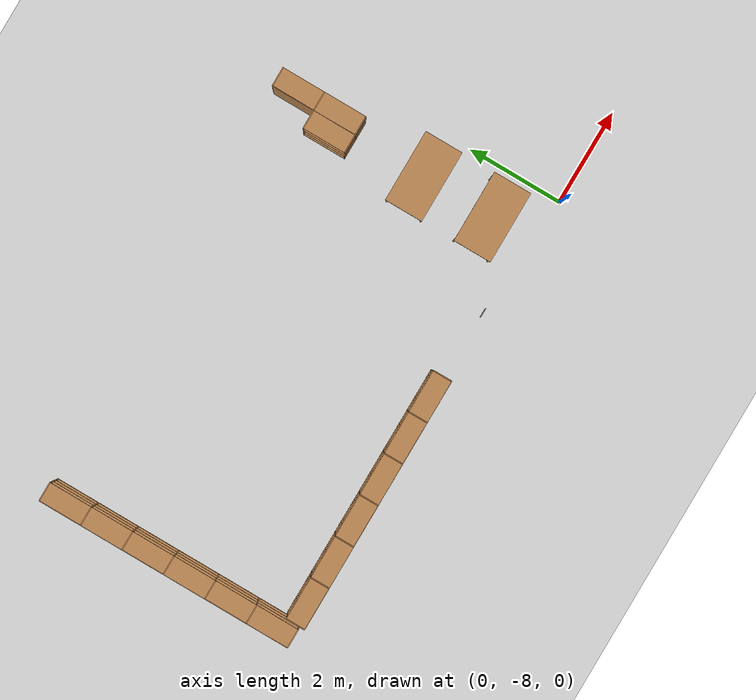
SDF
<sdf version="1.7">
 <world name="default">
  <model name="ground_plane">
   <static>1</static>
   <link name="link">
    <collision name="collision">
     <geometry><plane><normal>0 0 1</normal><size>100 100</size></plane></geometry>
     <surface><friction><ode><mu>100</mu><mu2>50</mu2></ode></friction></surface>
    </collision>
    <visual name="visual">
     <cast_shadows>0</cast_shadows>
     <geometry><plane><normal>0 0 1</normal><size>100 100</size></plane></geometry>
     <material>
      <script><uri>file://media/materials/scripts/gazebo.material</uri><name>Gazebo/Grey</name></script>
     </material>
    </visual>
   </link>
  </model>
  <model name="bot_secNeg1_A_2">
   <static>1</static>
   <link name="link">
    <inertial><mass>1</mass></inertial>
    <visual name="visual1">
     <pose>0 0.005 0.6 0 -0 0</pose>
     <geometry><box><size>0.9 0.01 1.2</size></box></geometry>
     <material>
      <script><uri>file://media/materials/scripts/gazebo.material</uri><name>Gazebo/Wood</name></script>
     </material>
    </visual>
    <visual name="visual2">
     <pose>0.45 -0.195 0.6 0 -0 0</pose>
     <geometry><box><size>0.02 0.4 1.2</size></box></geometry>
     <material>
      <script><uri>file://media/materials/scripts/gazebo.material</uri><name>Gazebo/Wood</name></script>
     </material>
    </visual>
    <visual name="visual3">
     <pose>-0.45 -0.195 0.6 0 -0 0</pose>
     <geometry><box><size>0.02 0.4 1.2</size></box></geometry>
     <material>
      <script><uri>file://media/materials/scripts/gazebo.material</uri><name>Gazebo/Wood</name></script>
     </material>
    </visual>
    <visual name="visual4">
     <pose>0 -0.195 0.03 0 -0 0</pose>
     <geometry><box><size>0.88 0.4 0.06</size></box></geometry>
     <material>
      <script><uri>file://media/materials/scripts/gazebo.material</uri><name>Gazebo/Wood</name></script>
     </material>
    </visual>
    <visual name="visual5">
     <pose>0 -0.195 1.19 0 -0 0</pose>
     <geometry><box><size>0.88 0.4 0.02</size></box></geometry>
     <material>
      <script><uri>file://media/materials/scripts/gazebo.material</uri><name>Gazebo/Wood</name></script>
     </material>
    </visual>
    <visual name="visual6">
     <pose>0 -0.195 0.43 0 -0 0</pose>
     <geometry><box><size>0.88 0.4 0.02</size></box></geometry>
     <material>
      <script><uri>file://media/materials/scripts/gazebo.material</uri><name>Gazebo/Wood</name></script>
     </material>
    </visual>
    <visual name="visual7">
     <pose>0 -0.195 0.8 0 -0 0</pose>
     <geometry><box><size>0.88 0.4 0.02</size></box></geometry>
     <material>
      <script><uri>file://media/materials/scripts/gazebo.material</uri><name>Gazebo/Wood</name></script>
     </material>
    </visual>
    <collision name="unified_hitbox">
     <pose>0 -0.1925 0.6 0 -0 0</pose>
     <geometry><box><size>0.92 0.405 1.2</size></box></geometry>
    </collision>
   </link>
   <pose>-1 -2.65 0 0 -0 1.57</pose>
  </model>
  <model name="bot_secNeg1_A_3">
   <static>1</static>
   <link name="link">
    <inertial><mass>1</mass></inertial>
    <visual name="visual1">
     <pose>0 0.005 0.6 0 -0 0</pose>
     <geometry><box><size>0.9 0.01 1.2</size></box></geometry>
     <material>
      <script><uri>file://media/materials/scripts/gazebo.material</uri><name>Gazebo/Wood</name></script>
     </material>
    </visual>
    <visual name="visual2">
     <pose>0.45 -0.195 0.6 0 -0 0</pose>
     <geometry><box><size>0.02 0.4 1.2</size></box></geometry>
     <material>
      <script><uri>file://media/materials/scripts/gazebo.material</uri><name>Gazebo/Wood</name></script>
     </material>
    </visual>
    <visual name="visual3">
     <pose>-0.45 -0.195 0.6 0 -0 0</pose>
     <geometry><box><size>0.02 0.4 1.2</size></box></geometry>
     <material>
      <script><uri>file://media/materials/scripts/gazebo.material</uri><name>Gazebo/Wood</name></script>
     </material>
    </visual>
    <visual name="visual4">
     <pose>0 -0.195 0.03 0 -0 0</pose>
     <geometry><box><size>0.88 0.4 0.06</size></box></geometry>
     <material>
      <script><uri>file://media/materials/scripts/gazebo.material</uri><name>Gazebo/Wood</name></script>
     </material>
    </visual>
    <visual name="visual5">
     <pose>0 -0.195 1.19 0 -0 0</pose>
     <geometry><box><size>0.88 0.4 0.02</size></box></geometry>
     <material>
      <script><uri>file://media/materials/scripts/gazebo.material</uri><name>Gazebo/Wood</name></script>
     </material>
    </visual>
    <visual name="visual6">
     <pose>0 -0.195 0.43 0 -0 0</pose>
     <geometry><box><size>0.88 0.4 0.02</size></box></geometry>
     <material>
      <script><uri>file://media/materials/scripts/gazebo.material</uri><name>Gazebo/Wood</name></script>
     </material>
    </visual>
    <visual name="visual7">
     <pose>0 -0.195 0.8 0 -0 0</pose>
     <geometry><box><size>0.88 0.4 0.02</size></box></geometry>
     <material>
      <script><uri>file://media/materials/scripts/gazebo.material</uri><name>Gazebo/Wood</name></script>
     </material>
    </visual>
    <collision name="unified_hitbox">
     <pose>0 -0.1925 0.6 0 -0 0</pose>
     <geometry><box><size>0.92 0.405 1.2</size></box></geometry>
    </collision>
   </link>
   <pose>-1 -3.55 0 0 -0 1.57</pose>
  </model>
  <model name="bot_secNeg1_B_3">
   <static>1</static>
   <link name="link">
    <inertial><mass>1</mass></inertial>
    <visual name="visual1">
     <pose>0 0.005 0.6 0 -0 0</pose>
     <geometry><box><size>0.9 0.01 1.2</size></box></geometry>
     <material>
      <script><uri>file://media/materials/scripts/gazebo.material</uri><name>Gazebo/Wood</name></script>
     </material>
    </visual>
    <visual name="visual2">
     <pose>0.45 -0.195 0.6 0 -0 0</pose>
     <geometry><box><size>0.02 0.4 1.2</size></box></geometry>
     <material>
      <script><uri>file://media/materials/scripts/gazebo.material</uri><name>Gazebo/Wood</name></script>
     </material>
    </visual>
    <visual name="visual3">
     <pose>-0.45 -0.195 0.6 0 -0 0</pose>
     <geometry><box><size>0.02 0.4 1.2</size></box></geometry>
     <material>
      <script><uri>file://media/materials/scripts/gazebo.material</uri><name>Gazebo/Wood</name></script>
     </material>
    </visual>
    <visual name="visual4">
     <pose>0 -0.195 0.03 0 -0 0</pose>
     <geometry><box><size>0.88 0.4 0.06</size></box></geometry>
     <material>
      <script><uri>file://media/materials/scripts/gazebo.material</uri><name>Gazebo/Wood</name></script>
     </material>
    </visual>
    <visual name="visual5">
     <pose>0 -0.195 1.19 0 -0 0</pose>
     <geometry><box><size>0.88 0.4 0.02</size></box></geometry>
     <material>
      <script><uri>file://media/materials/scripts/gazebo.material</uri><name>Gazebo/Wood</name></script>
     </material>
    </visual>
    <visual name="visual6">
     <pose>0 -0.195 0.43 0 -0 0</pose>
     <geometry><box><size>0.88 0.4 0.02</size></box></geometry>
     <material>
      <script><uri>file://media/materials/scripts/gazebo.material</uri><name>Gazebo/Wood</name></script>
     </material>
    </visual>
    <visual name="visual7">
     <pose>0 -0.195 0.8 0 -0 0</pose>
     <geometry><box><size>0.88 0.4 0.02</size></box></geometry>
     <material>
      <script><uri>file://media/materials/scripts/gazebo.material</uri><name>Gazebo/Wood</name></script>
     </material>
    </visual>
    <collision name="unified_hitbox">
     <pose>0 -0.1925 0.6 0 -0 0</pose>
     <geometry><box><size>0.92 0.405 1.2</size></box></geometry>
    </collision>
   </link>
   <pose>-1 -3.55 0 0 0 -1.57</pose>
  </model>
  <model name="bot_row1_1">
   <static>1</static>
   <link name="link">
    <visual name="visual1">
     <pose>0 0 1 0 -0 0</pose>
     <geometry><box><size>1.5 0.8 0.03</size></box></geometry>
     <material>
      <script><uri>file://media/materials/scripts/gazebo.material</uri><name>Gazebo/Wood</name></script>
     </material>
    </visual>
    <visual name="front_left_leg">
     <pose>0.68 0.38 0.5 0 -0 0</pose>
     <geometry><cylinder><radius>0.02</radius><length>1</length></cylinder></geometry>
     <material>
      <script><uri>file://media/materials/scripts/gazebo.material</uri><name>Gazebo/Grey</name></script>
     </material>
    </visual>
    <visual name="front_right_leg">
     <pose>0.68 -0.38 0.5 0 -0 0</pose>
     <geometry><cylinder><radius>0.02</radius><length>1</length></cylinder></geometry>
     <material>
      <script><uri>file://media/materials/scripts/gazebo.material</uri><name>Gazebo/Grey</name></script>
     </material>
    </visual>
    <visual name="back_right_leg">
     <pose>-0.68 -0.38 0.5 0 -0 0</pose>
     <geometry><cylinder><radius>0.02</radius><length>1</length></cylinder></geometry>
     <material>
      <script><uri>file://media/materials/scripts/gazebo.material</uri><name>Gazebo/Grey</name></script>
     </material>
    </visual>
    <visual name="back_left_leg">
     <pose>-0.68 0.38 0.5 0 -0 0</pose>
     <geometry><cylinder><radius>0.02</radius><length>1</length></cylinder></geometry>
     <material>
      <script><uri>file://media/materials/scripts/gazebo.material</uri><name>Gazebo/Grey</name></script>
     </material>
    </visual>
    <collision name="unified_hitbox">
     <pose>0 0 0.5075 0 -0 0</pose>
     <geometry><box><size>1.5 0.8 1.015</size></box></geometry>
    </collision>
   </link>
   <pose>-1 -5.5 0 0 -0 0</pose>
  </model>
  <model name="bot_row2_1">
   <static>1</static>
   <link name="link">
    <visual name="visual1">
     <pose>0 0 1 0 -0 0</pose>
     <geometry><box><size>1.5 0.8 0.03</size></box></geometry>
     <material>
      <script><uri>file://media/materials/scripts/gazebo.material</uri><name>Gazebo/Wood</name></script>
     </material>
    </visual>
    <visual name="front_left_leg">
     <pose>0.68 0.38 0.5 0 -0 0</pose>
     <geometry><cylinder><radius>0.02</radius><length>1</length></cylinder></geometry>
     <material>
      <script><uri>file://media/materials/scripts/gazebo.material</uri><name>Gazebo/Grey</name></script>
     </material>
    </visual>
    <visual name="front_right_leg">
     <pose>0.68 -0.38 0.5 0 -0 0</pose>
     <geometry><cylinder><radius>0.02</radius><length>1</length></cylinder></geometry>
     <material>
      <script><uri>file://media/materials/scripts/gazebo.material</uri><name>Gazebo/Grey</name></script>
     </material>
    </visual>
    <visual name="back_right_leg">
     <pose>-0.68 -0.38 0.5 0 -0 0</pose>
     <geometry><cylinder><radius>0.02</radius><length>1</length></cylinder></geometry>
     <material>
      <script><uri>file://media/materials/scripts/gazebo.material</uri><name>Gazebo/Grey</name></script>
     </material>
    </visual>
    <visual name="back_left_leg">
     <pose>-0.68 0.38 0.5 0 -0 0</pose>
     <geometry><cylinder><radius>0.02</radius><length>1</length></cylinder></geometry>
     <material>
      <script><uri>file://media/materials/scripts/gazebo.material</uri><name>Gazebo/Grey</name></script>
     </material>
    </visual>
    <collision name="unified_hitbox">
     <pose>0 0 0.5075 0 -0 0</pose>
     <geometry><box><size>1.5 0.8 1.015</size></box></geometry>
    </collision>
   </link>
   <pose>-1 -7 0 0 -0 0</pose>
  </model>
  <model name="archive_left_1">
   <static>1</static>
   <link name="link">
    <inertial><mass>1</mass></inertial>
    <collision name="back">
     <pose>0 0.005 0.6 0 -0 0</pose>
     <geometry><box><size>0.9 0.01 1.2</size></box></geometry>
    </collision>
    <visual name="visual1">
     <pose>0 0.005 0.6 0 -0 0</pose>
     <geometry><box><size>0.9 0.01 1.2</size></box></geometry>
     <material>
      <script><uri>file://media/materials/scripts/gazebo.material</uri><name>Gazebo/Wood</name></script>
     </material>
    </visual>
    <collision name="left_side">
     <pose>0.45 -0.195 0.6 0 -0 0</pose>
     <geometry><box><size>0.02 0.4 1.2</size></box></geometry>
    </collision>
    <visual name="visual2">
     <pose>0.45 -0.195 0.6 0 -0 0</pose>
     <geometry><box><size>0.02 0.4 1.2</size></box></geometry>
     <material>
      <script><uri>file://media/materials/scripts/gazebo.material</uri><name>Gazebo/Wood</name></script>
     </material>
    </visual>
    <collision name="right_side">
     <pose>-0.45 -0.195 0.6 0 -0 0</pose>
     <geometry><box><size>0.02 0.4 1.2</size></box></geometry>
    </collision>
    <visual name="visual3">
     <pose>-0.45 -0.195 0.6 0 -0 0</pose>
     <geometry><box><size>0.02 0.4 1.2</size></box></geometry>
     <material>
      <script><uri>file://media/materials/scripts/gazebo.material</uri><name>Gazebo/Wood</name></script>
     </material>
    </visual>
    <collision name="bottom">
     <pose>0 -0.195 0.03 0 -0 0</pose>
     <geometry><box><size>0.88 0.4 0.06</size></box></geometry>
    </collision>
    <visual name="visual4">
     <pose>0 -0.195 0.03 0 -0 0</pose>
     <geometry><box><size>0.88 0.4 0.06</size></box></geometry>
     <material>
      <script><uri>file://media/materials/scripts/gazebo.material</uri><name>Gazebo/Wood</name></script>
     </material>
    </visual>
    <collision name="top">
     <pose>0 -0.195 1.19 0 -0 0</pose>
     <geometry><box><size>0.88 0.4 0.02</size></box></geometry>
    </collision>
    <visual name="visual5">
     <pose>0 -0.195 1.19 0 -0 0</pose>
     <geometry><box><size>0.88 0.4 0.02</size></box></geometry>
     <material>
      <script><uri>file://media/materials/scripts/gazebo.material</uri><name>Gazebo/Wood</name></script>
     </material>
    </visual>
    <collision name="low_shelf">
     <pose>0 -0.195 0.43 0 -0 0</pose>
     <geometry><box><size>0.88 0.4 0.02</size></box></geometry>
    </collision>
    <visual name="visual6">
     <pose>0 -0.195 0.43 0 -0 0</pose>
     <geometry><box><size>0.88 0.4 0.02</size></box></geometry>
     <material>
      <script><uri>file://media/materials/scripts/gazebo.material</uri><name>Gazebo/Wood</name></script>
     </material>
    </visual>
    <collision name="high_shelf">
     <pose>0 -0.195 0.8 0 -0 0</pose>
     <geometry><box><size>0.88 0.4 0.02</size></box></geometry>
    </collision>
    <visual name="visual7">
     <pose>0 -0.195 0.8 0 -0 0</pose>
     <geometry><box><size>0.88 0.4 0.02</size></box></geometry>
     <material>
      <script><uri>file://media/materials/scripts/gazebo.material</uri><name>Gazebo/Wood</name></script>
     </material>
    </visual>
   </link>
   <pose>-9.9 -7.35 0 0 -0 1.57</pose>
  </model>
  <model name="archive_left_2">
   <static>1</static>
   <link name="link">
    <inertial><mass>1</mass></inertial>
    <collision name="back">
     <pose>0 0.005 0.6 0 -0 0</pose>
     <geometry><box><size>0.9 0.01 1.2</size></box></geometry>
    </collision>
    <visual name="visual1">
     <pose>0 0.005 0.6 0 -0 0</pose>
     <geometry><box><size>0.9 0.01 1.2</size></box></geometry>
     <material>
      <script><uri>file://media/materials/scripts/gazebo.material</uri><name>Gazebo/Wood</name></script>
     </material>
    </visual>
    <collision name="left_side">
     <pose>0.45 -0.195 0.6 0 -0 0</pose>
     <geometry><box><size>0.02 0.4 1.2</size></box></geometry>
    </collision>
    <visual name="visual2">
     <pose>0.45 -0.195 0.6 0 -0 0</pose>
     <geometry><box><size>0.02 0.4 1.2</size></box></geometry>
     <material>
      <script><uri>file://media/materials/scripts/gazebo.material</uri><name>Gazebo/Wood</name></script>
     </material>
    </visual>
    <collision name="right_side">
     <pose>-0.45 -0.195 0.6 0 -0 0</pose>
     <geometry><box><size>0.02 0.4 1.2</size></box></geometry>
    </collision>
    <visual name="visual3">
     <pose>-0.45 -0.195 0.6 0 -0 0</pose>
     <geometry><box><size>0.02 0.4 1.2</size></box></geometry>
     <material>
      <script><uri>file://media/materials/scripts/gazebo.material</uri><name>Gazebo/Wood</name></script>
     </material>
    </visual>
    <collision name="bottom">
     <pose>0 -0.195 0.03 0 -0 0</pose>
     <geometry><box><size>0.88 0.4 0.06</size></box></geometry>
    </collision>
    <visual name="visual4">
     <pose>0 -0.195 0.03 0 -0 0</pose>
     <geometry><box><size>0.88 0.4 0.06</size></box></geometry>
     <material>
      <script><uri>file://media/materials/scripts/gazebo.material</uri><name>Gazebo/Wood</name></script>
     </material>
    </visual>
    <collision name="top">
     <pose>0 -0.195 1.19 0 -0 0</pose>
     <geometry><box><size>0.88 0.4 0.02</size></box></geometry>
    </collision>
    <visual name="visual5">
     <pose>0 -0.195 1.19 0 -0 0</pose>
     <geometry><box><size>0.88 0.4 0.02</size></box></geometry>
     <material>
      <script><uri>file://media/materials/scripts/gazebo.material</uri><name>Gazebo/Wood</name></script>
     </material>
    </visual>
    <collision name="low_shelf">
     <pose>0 -0.195 0.43 0 -0 0</pose>
     <geometry><box><size>0.88 0.4 0.02</size></box></geometry>
    </collision>
    <visual name="visual6">
     <pose>0 -0.195 0.43 0 -0 0</pose>
     <geometry><box><size>0.88 0.4 0.02</size></box></geometry>
     <material>
      <script><uri>file://media/materials/scripts/gazebo.material</uri><name>Gazebo/Wood</name></script>
     </material>
    </visual>
    <collision name="high_shelf">
     <pose>0 -0.195 0.8 0 -0 0</pose>
     <geometry><box><size>0.88 0.4 0.02</size></box></geometry>
    </collision>
    <visual name="visual7">
     <pose>0 -0.195 0.8 0 -0 0</pose>
     <geometry><box><size>0.88 0.4 0.02</size></box></geometry>
     <material>
      <script><uri>file://media/materials/scripts/gazebo.material</uri><name>Gazebo/Wood</name></script>
     </material>
    </visual>
   </link>
   <pose>-9.9 -6.45 0 0 -0 1.57</pose>
  </model>
  <model name="archive_left_3">
   <static>1</static>
   <link name="link">
    <inertial><mass>1</mass></inertial>
    <collision name="back">
     <pose>0 0.005 0.6 0 -0 0</pose>
     <geometry><box><size>0.9 0.01 1.2</size></box></geometry>
    </collision>
    <visual name="visual1">
     <pose>0 0.005 0.6 0 -0 0</pose>
     <geometry><box><size>0.9 0.01 1.2</size></box></geometry>
     <material>
      <script><uri>file://media/materials/scripts/gazebo.material</uri><name>Gazebo/Wood</name></script>
     </material>
    </visual>
    <collision name="left_side">
     <pose>0.45 -0.195 0.6 0 -0 0</pose>
     <geometry><box><size>0.02 0.4 1.2</size></box></geometry>
    </collision>
    <visual name="visual2">
     <pose>0.45 -0.195 0.6 0 -0 0</pose>
     <geometry><box><size>0.02 0.4 1.2</size></box></geometry>
     <material>
      <script><uri>file://media/materials/scripts/gazebo.material</uri><name>Gazebo/Wood</name></script>
     </material>
    </visual>
    <collision name="right_side">
     <pose>-0.45 -0.195 0.6 0 -0 0</pose>
     <geometry><box><size>0.02 0.4 1.2</size></box></geometry>
    </collision>
    <visual name="visual3">
     <pose>-0.45 -0.195 0.6 0 -0 0</pose>
     <geometry><box><size>0.02 0.4 1.2</size></box></geometry>
     <material>
      <script><uri>file://media/materials/scripts/gazebo.material</uri><name>Gazebo/Wood</name></script>
     </material>
    </visual>
    <collision name="bottom">
     <pose>0 -0.195 0.03 0 -0 0</pose>
     <geometry><box><size>0.88 0.4 0.06</size></box></geometry>
    </collision>
    <visual name="visual4">
     <pose>0 -0.195 0.03 0 -0 0</pose>
     <geometry><box><size>0.88 0.4 0.06</size></box></geometry>
     <material>
      <script><uri>file://media/materials/scripts/gazebo.material</uri><name>Gazebo/Wood</name></script>
     </material>
    </visual>
    <collision name="top">
     <pose>0 -0.195 1.19 0 -0 0</pose>
     <geometry><box><size>0.88 0.4 0.02</size></box></geometry>
    </collision>
    <visual name="visual5">
     <pose>0 -0.195 1.19 0 -0 0</pose>
     <geometry><box><size>0.88 0.4 0.02</size></box></geometry>
     <material>
      <script><uri>file://media/materials/scripts/gazebo.material</uri><name>Gazebo/Wood</name></script>
     </material>
    </visual>
    <collision name="low_shelf">
     <pose>0 -0.195 0.43 0 -0 0</pose>
     <geometry><box><size>0.88 0.4 0.02</size></box></geometry>
    </collision>
    <visual name="visual6">
     <pose>0 -0.195 0.43 0 -0 0</pose>
     <geometry><box><size>0.88 0.4 0.02</size></box></geometry>
     <material>
      <script><uri>file://media/materials/scripts/gazebo.material</uri><name>Gazebo/Wood</name></script>
     </material>
    </visual>
    <collision name="high_shelf">
     <pose>0 -0.195 0.8 0 -0 0</pose>
     <geometry><box><size>0.88 0.4 0.02</size></box></geometry>
    </collision>
    <visual name="visual7">
     <pose>0 -0.195 0.8 0 -0 0</pose>
     <geometry><box><size>0.88 0.4 0.02</size></box></geometry>
     <material>
      <script><uri>file://media/materials/scripts/gazebo.material</uri><name>Gazebo/Wood</name></script>
     </material>
    </visual>
   </link>
   <pose>-9.9 -5.55 0 0 -0 1.57</pose>
  </model>
  <model name="archive_left_4">
   <static>1</static>
   <link name="link">
    <inertial><mass>1</mass></inertial>
    <collision name="back">
     <pose>0 0.005 0.6 0 -0 0</pose>
     <geometry><box><size>0.9 0.01 1.2</size></box></geometry>
    </collision>
    <visual name="visual1">
     <pose>0 0.005 0.6 0 -0 0</pose>
     <geometry><box><size>0.9 0.01 1.2</size></box></geometry>
     <material>
      <script><uri>file://media/materials/scripts/gazebo.material</uri><name>Gazebo/Wood</name></script>
     </material>
    </visual>
    <collision name="left_side">
     <pose>0.45 -0.195 0.6 0 -0 0</pose>
     <geometry><box><size>0.02 0.4 1.2</size></box></geometry>
    </collision>
    <visual name="visual2">
     <pose>0.45 -0.195 0.6 0 -0 0</pose>
     <geometry><box><size>0.02 0.4 1.2</size></box></geometry>
     <material>
      <script><uri>file://media/materials/scripts/gazebo.material</uri><name>Gazebo/Wood</name></script>
     </material>
    </visual>
    <collision name="right_side">
     <pose>-0.45 -0.195 0.6 0 -0 0</pose>
     <geometry><box><size>0.02 0.4 1.2</size></box></geometry>
    </collision>
    <visual name="visual3">
     <pose>-0.45 -0.195 0.6 0 -0 0</pose>
     <geometry><box><size>0.02 0.4 1.2</size></box></geometry>
     <material>
      <script><uri>file://media/materials/scripts/gazebo.material</uri><name>Gazebo/Wood</name></script>
     </material>
    </visual>
    <collision name="bottom">
     <pose>0 -0.195 0.03 0 -0 0</pose>
     <geometry><box><size>0.88 0.4 0.06</size></box></geometry>
    </collision>
    <visual name="visual4">
     <pose>0 -0.195 0.03 0 -0 0</pose>
     <geometry><box><size>0.88 0.4 0.06</size></box></geometry>
     <material>
      <script><uri>file://media/materials/scripts/gazebo.material</uri><name>Gazebo/Wood</name></script>
     </material>
    </visual>
    <collision name="top">
     <pose>0 -0.195 1.19 0 -0 0</pose>
     <geometry><box><size>0.88 0.4 0.02</size></box></geometry>
    </collision>
    <visual name="visual5">
     <pose>0 -0.195 1.19 0 -0 0</pose>
     <geometry><box><size>0.88 0.4 0.02</size></box></geometry>
     <material>
      <script><uri>file://media/materials/scripts/gazebo.material</uri><name>Gazebo/Wood</name></script>
     </material>
    </visual>
    <collision name="low_shelf">
     <pose>0 -0.195 0.43 0 -0 0</pose>
     <geometry><box><size>0.88 0.4 0.02</size></box></geometry>
    </collision>
    <visual name="visual6">
     <pose>0 -0.195 0.43 0 -0 0</pose>
     <geometry><box><size>0.88 0.4 0.02</size></box></geometry>
     <material>
      <script><uri>file://media/materials/scripts/gazebo.material</uri><name>Gazebo/Wood</name></script>
     </material>
    </visual>
    <collision name="high_shelf">
     <pose>0 -0.195 0.8 0 -0 0</pose>
     <geometry><box><size>0.88 0.4 0.02</size></box></geometry>
    </collision>
    <visual name="visual7">
     <pose>0 -0.195 0.8 0 -0 0</pose>
     <geometry><box><size>0.88 0.4 0.02</size></box></geometry>
     <material>
      <script><uri>file://media/materials/scripts/gazebo.material</uri><name>Gazebo/Wood</name></script>
     </material>
    </visual>
   </link>
   <pose>-9.9 -4.65 0 0 -0 1.57</pose>
  </model>
  <model name="archive_left_5">
   <static>1</static>
   <link name="link">
    <inertial><mass>1</mass></inertial>
    <collision name="back">
     <pose>0 0.005 0.6 0 -0 0</pose>
     <geometry><box><size>0.9 0.01 1.2</size></box></geometry>
    </collision>
    <visual name="visual1">
     <pose>0 0.005 0.6 0 -0 0</pose>
     <geometry><box><size>0.9 0.01 1.2</size></box></geometry>
     <material>
      <script><uri>file://media/materials/scripts/gazebo.material</uri><name>Gazebo/Wood</name></script>
     </material>
    </visual>
    <collision name="left_side">
     <pose>0.45 -0.195 0.6 0 -0 0</pose>
     <geometry><box><size>0.02 0.4 1.2</size></box></geometry>
    </collision>
    <visual name="visual2">
     <pose>0.45 -0.195 0.6 0 -0 0</pose>
     <geometry><box><size>0.02 0.4 1.2</size></box></geometry>
     <material>
      <script><uri>file://media/materials/scripts/gazebo.material</uri><name>Gazebo/Wood</name></script>
     </material>
    </visual>
    <collision name="right_side">
     <pose>-0.45 -0.195 0.6 0 -0 0</pose>
     <geometry><box><size>0.02 0.4 1.2</size></box></geometry>
    </collision>
    <visual name="visual3">
     <pose>-0.45 -0.195 0.6 0 -0 0</pose>
     <geometry><box><size>0.02 0.4 1.2</size></box></geometry>
     <material>
      <script><uri>file://media/materials/scripts/gazebo.material</uri><name>Gazebo/Wood</name></script>
     </material>
    </visual>
    <collision name="bottom">
     <pose>0 -0.195 0.03 0 -0 0</pose>
     <geometry><box><size>0.88 0.4 0.06</size></box></geometry>
    </collision>
    <visual name="visual4">
     <pose>0 -0.195 0.03 0 -0 0</pose>
     <geometry><box><size>0.88 0.4 0.06</size></box></geometry>
     <material>
      <script><uri>file://media/materials/scripts/gazebo.material</uri><name>Gazebo/Wood</name></script>
     </material>
    </visual>
    <collision name="top">
     <pose>0 -0.195 1.19 0 -0 0</pose>
     <geometry><box><size>0.88 0.4 0.02</size></box></geometry>
    </collision>
    <visual name="visual5">
     <pose>0 -0.195 1.19 0 -0 0</pose>
     <geometry><box><size>0.88 0.4 0.02</size></box></geometry>
     <material>
      <script><uri>file://media/materials/scripts/gazebo.material</uri><name>Gazebo/Wood</name></script>
     </material>
    </visual>
    <collision name="low_shelf">
     <pose>0 -0.195 0.43 0 -0 0</pose>
     <geometry><box><size>0.88 0.4 0.02</size></box></geometry>
    </collision>
    <visual name="visual6">
     <pose>0 -0.195 0.43 0 -0 0</pose>
     <geometry><box><size>0.88 0.4 0.02</size></box></geometry>
     <material>
      <script><uri>file://media/materials/scripts/gazebo.material</uri><name>Gazebo/Wood</name></script>
     </material>
    </visual>
    <collision name="high_shelf">
     <pose>0 -0.195 0.8 0 -0 0</pose>
     <geometry><box><size>0.88 0.4 0.02</size></box></geometry>
    </collision>
    <visual name="visual7">
     <pose>0 -0.195 0.8 0 -0 0</pose>
     <geometry><box><size>0.88 0.4 0.02</size></box></geometry>
     <material>
      <script><uri>file://media/materials/scripts/gazebo.material</uri><name>Gazebo/Wood</name></script>
     </material>
    </visual>
   </link>
   <pose>-9.9 -3.75 0 0 -0 1.57</pose>
  </model>
  <model name="archive_left_6">
   <static>1</static>
   <link name="link">
    <inertial><mass>1</mass></inertial>
    <collision name="back">
     <pose>0 0.005 0.6 0 -0 0</pose>
     <geometry><box><size>0.9 0.01 1.2</size></box></geometry>
    </collision>
    <visual name="visual1">
     <pose>0 0.005 0.6 0 -0 0</pose>
     <geometry><box><size>0.9 0.01 1.2</size></box></geometry>
     <material>
      <script><uri>file://media/materials/scripts/gazebo.material</uri><name>Gazebo/Wood</name></script>
     </material>
    </visual>
    <collision name="left_side">
     <pose>0.45 -0.195 0.6 0 -0 0</pose>
     <geometry><box><size>0.02 0.4 1.2</size></box></geometry>
    </collision>
    <visual name="visual2">
     <pose>0.45 -0.195 0.6 0 -0 0</pose>
     <geometry><box><size>0.02 0.4 1.2</size></box></geometry>
     <material>
      <script><uri>file://media/materials/scripts/gazebo.material</uri><name>Gazebo/Wood</name></script>
     </material>
    </visual>
    <collision name="right_side">
     <pose>-0.45 -0.195 0.6 0 -0 0</pose>
     <geometry><box><size>0.02 0.4 1.2</size></box></geometry>
    </collision>
    <visual name="visual3">
     <pose>-0.45 -0.195 0.6 0 -0 0</pose>
     <geometry><box><size>0.02 0.4 1.2</size></box></geometry>
     <material>
      <script><uri>file://media/materials/scripts/gazebo.material</uri><name>Gazebo/Wood</name></script>
     </material>
    </visual>
    <collision name="bottom">
     <pose>0 -0.195 0.03 0 -0 0</pose>
     <geometry><box><size>0.88 0.4 0.06</size></box></geometry>
    </collision>
    <visual name="visual4">
     <pose>0 -0.195 0.03 0 -0 0</pose>
     <geometry><box><size>0.88 0.4 0.06</size></box></geometry>
     <material>
      <script><uri>file://media/materials/scripts/gazebo.material</uri><name>Gazebo/Wood</name></script>
     </material>
    </visual>
    <collision name="top">
     <pose>0 -0.195 1.19 0 -0 0</pose>
     <geometry><box><size>0.88 0.4 0.02</size></box></geometry>
    </collision>
    <visual name="visual5">
     <pose>0 -0.195 1.19 0 -0 0</pose>
     <geometry><box><size>0.88 0.4 0.02</size></box></geometry>
     <material>
      <script><uri>file://media/materials/scripts/gazebo.material</uri><name>Gazebo/Wood</name></script>
     </material>
    </visual>
    <collision name="low_shelf">
     <pose>0 -0.195 0.43 0 -0 0</pose>
     <geometry><box><size>0.88 0.4 0.02</size></box></geometry>
    </collision>
    <visual name="visual6">
     <pose>0 -0.195 0.43 0 -0 0</pose>
     <geometry><box><size>0.88 0.4 0.02</size></box></geometry>
     <material>
      <script><uri>file://media/materials/scripts/gazebo.material</uri><name>Gazebo/Wood</name></script>
     </material>
    </visual>
    <collision name="high_shelf">
     <pose>0 -0.195 0.8 0 -0 0</pose>
     <geometry><box><size>0.88 0.4 0.02</size></box></geometry>
    </collision>
    <visual name="visual7">
     <pose>0 -0.195 0.8 0 -0 0</pose>
     <geometry><box><size>0.88 0.4 0.02</size></box></geometry>
     <material>
      <script><uri>file://media/materials/scripts/gazebo.material</uri><name>Gazebo/Wood</name></script>
     </material>
    </visual>
   </link>
   <pose>-9.9 -2.85 0 0 -0 1.57</pose>
  </model>
  <model name="archive_bottom_1">
   <static>1</static>
   <link name="link">
    <inertial><mass>1</mass></inertial>
    <visual name="visual1">
     <pose>0 0.005 0.6 0 -0 0</pose>
     <geometry><box><size>0.9 0.01 1.2</size></box></geometry>
     <material>
      <script><uri>file://media/materials/scripts/gazebo.material</uri><name>Gazebo/Wood</name></script>
     </material>
    </visual>
    <visual name="visual2">
     <pose>0.45 -0.195 0.6 0 -0 0</pose>
     <geometry><box><size>0.02 0.4 1.2</size></box></geometry>
     <material>
      <script><uri>file://media/materials/scripts/gazebo.material</uri><name>Gazebo/Wood</name></script>
     </material>
    </visual>
    <visual name="visual3">
     <pose>-0.45 -0.195 0.6 0 -0 0</pose>
     <geometry><box><size>0.02 0.4 1.2</size></box></geometry>
     <material>
      <script><uri>file://media/materials/scripts/gazebo.material</uri><name>Gazebo/Wood</name></script>
     </material>
    </visual>
    <visual name="visual4">
     <pose>0 -0.195 0.03 0 -0 0</pose>
     <geometry><box><size>0.88 0.4 0.06</size></box></geometry>
     <material>
      <script><uri>file://media/materials/scripts/gazebo.material</uri><name>Gazebo/Wood</name></script>
     </material>
    </visual>
    <visual name="visual5">
     <pose>0 -0.195 1.19 0 -0 0</pose>
     <geometry><box><size>0.88 0.4 0.02</size></box></geometry>
     <material>
      <script><uri>file://media/materials/scripts/gazebo.material</uri><name>Gazebo/Wood</name></script>
     </material>
    </visual>
    <visual name="visual6">
     <pose>0 -0.195 0.43 0 -0 0</pose>
     <geometry><box><size>0.88 0.4 0.02</size></box></geometry>
     <material>
      <script><uri>file://media/materials/scripts/gazebo.material</uri><name>Gazebo/Wood</name></script>
     </material>
    </visual>
    <visual name="visual7">
     <pose>0 -0.195 0.8 0 -0 0</pose>
     <geometry><box><size>0.88 0.4 0.02</size></box></geometry>
     <material>
      <script><uri>file://media/materials/scripts/gazebo.material</uri><name>Gazebo/Wood</name></script>
     </material>
    </visual>
    <collision name="unified_hitbox">
     <pose>0 -0.1925 0.6 0 -0 0</pose>
     <geometry><box><size>0.92 0.405 1.2</size></box></geometry>
    </collision>
   </link>
   <pose>-9 -7.9 0 0 -0 3.14</pose>
  </model>
  <model name="archive_bottom_2">
   <static>1</static>
   <link name="link">
    <inertial><mass>1</mass></inertial>
    <visual name="visual1">
     <pose>0 0.005 0.6 0 -0 0</pose>
     <geometry><box><size>0.9 0.01 1.2</size></box></geometry>
     <material>
      <script><uri>file://media/materials/scripts/gazebo.material</uri><name>Gazebo/Wood</name></script>
     </material>
    </visual>
    <visual name="visual2">
     <pose>0.45 -0.195 0.6 0 -0 0</pose>
     <geometry><box><size>0.02 0.4 1.2</size></box></geometry>
     <material>
      <script><uri>file://media/materials/scripts/gazebo.material</uri><name>Gazebo/Wood</name></script>
     </material>
    </visual>
    <visual name="visual3">
     <pose>-0.45 -0.195 0.6 0 -0 0</pose>
     <geometry><box><size>0.02 0.4 1.2</size></box></geometry>
     <material>
      <script><uri>file://media/materials/scripts/gazebo.material</uri><name>Gazebo/Wood</name></script>
     </material>
    </visual>
    <visual name="visual4">
     <pose>0 -0.195 0.03 0 -0 0</pose>
     <geometry><box><size>0.88 0.4 0.06</size></box></geometry>
     <material>
      <script><uri>file://media/materials/scripts/gazebo.material</uri><name>Gazebo/Wood</name></script>
     </material>
    </visual>
    <visual name="visual5">
     <pose>0 -0.195 1.19 0 -0 0</pose>
     <geometry><box><size>0.88 0.4 0.02</size></box></geometry>
     <material>
      <script><uri>file://media/materials/scripts/gazebo.material</uri><name>Gazebo/Wood</name></script>
     </material>
    </visual>
    <visual name="visual6">
     <pose>0 -0.195 0.43 0 -0 0</pose>
     <geometry><box><size>0.88 0.4 0.02</size></box></geometry>
     <material>
      <script><uri>file://media/materials/scripts/gazebo.material</uri><name>Gazebo/Wood</name></script>
     </material>
    </visual>
    <visual name="visual7">
     <pose>0 -0.195 0.8 0 -0 0</pose>
     <geometry><box><size>0.88 0.4 0.02</size></box></geometry>
     <material>
      <script><uri>file://media/materials/scripts/gazebo.material</uri><name>Gazebo/Wood</name></script>
     </material>
    </visual>
    <collision name="unified_hitbox">
     <pose>0 -0.1925 0.6 0 -0 0</pose>
     <geometry><box><size>0.92 0.405 1.2</size></box></geometry>
    </collision>
   </link>
   <pose>-8.1 -7.9 0 0 -0 3.14</pose>
  </model>
  <model name="archive_bottom_3">
   <static>1</static>
   <link name="link">
    <inertial><mass>1</mass></inertial>
    <visual name="visual1">
     <pose>0 0.005 0.6 0 -0 0</pose>
     <geometry><box><size>0.9 0.01 1.2</size></box></geometry>
     <material>
      <script><uri>file://media/materials/scripts/gazebo.material</uri><name>Gazebo/Wood</name></script>
     </material>
    </visual>
    <visual name="visual2">
     <pose>0.45 -0.195 0.6 0 -0 0</pose>
     <geometry><box><size>0.02 0.4 1.2</size></box></geometry>
     <material>
      <script><uri>file://media/materials/scripts/gazebo.material</uri><name>Gazebo/Wood</name></script>
     </material>
    </visual>
    <visual name="visual3">
     <pose>-0.45 -0.195 0.6 0 -0 0</pose>
     <geometry><box><size>0.02 0.4 1.2</size></box></geometry>
     <material>
      <script><uri>file://media/materials/scripts/gazebo.material</uri><name>Gazebo/Wood</name></script>
     </material>
    </visual>
    <visual name="visual4">
     <pose>0 -0.195 0.03 0 -0 0</pose>
     <geometry><box><size>0.88 0.4 0.06</size></box></geometry>
     <material>
      <script><uri>file://media/materials/scripts/gazebo.material</uri><name>Gazebo/Wood</name></script>
     </material>
    </visual>
    <visual name="visual5">
     <pose>0 -0.195 1.19 0 -0 0</pose>
     <geometry><box><size>0.88 0.4 0.02</size></box></geometry>
     <material>
      <script><uri>file://media/materials/scripts/gazebo.material</uri><name>Gazebo/Wood</name></script>
     </material>
    </visual>
    <visual name="visual6">
     <pose>0 -0.195 0.43 0 -0 0</pose>
     <geometry><box><size>0.88 0.4 0.02</size></box></geometry>
     <material>
      <script><uri>file://media/materials/scripts/gazebo.material</uri><name>Gazebo/Wood</name></script>
     </material>
    </visual>
    <visual name="visual7">
     <pose>0 -0.195 0.8 0 -0 0</pose>
     <geometry><box><size>0.88 0.4 0.02</size></box></geometry>
     <material>
      <script><uri>file://media/materials/scripts/gazebo.material</uri><name>Gazebo/Wood</name></script>
     </material>
    </visual>
    <collision name="unified_hitbox">
     <pose>0 -0.1925 0.6 0 -0 0</pose>
     <geometry><box><size>0.92 0.405 1.2</size></box></geometry>
    </collision>
   </link>
   <pose>-7.2 -7.9 0 0 -0 3.14</pose>
  </model>
  <model name="archive_bottom_4">
   <static>1</static>
   <link name="link">
    <inertial><mass>1</mass></inertial>
    <visual name="visual1">
     <pose>0 0.005 0.6 0 -0 0</pose>
     <geometry><box><size>0.9 0.01 1.2</size></box></geometry>
     <material>
      <script><uri>file://media/materials/scripts/gazebo.material</uri><name>Gazebo/Wood</name></script>
     </material>
    </visual>
    <visual name="visual2">
     <pose>0.45 -0.195 0.6 0 -0 0</pose>
     <geometry><box><size>0.02 0.4 1.2</size></box></geometry>
     <material>
      <script><uri>file://media/materials/scripts/gazebo.material</uri><name>Gazebo/Wood</name></script>
     </material>
    </visual>
    <visual name="visual3">
     <pose>-0.45 -0.195 0.6 0 -0 0</pose>
     <geometry><box><size>0.02 0.4 1.2</size></box></geometry>
     <material>
      <script><uri>file://media/materials/scripts/gazebo.material</uri><name>Gazebo/Wood</name></script>
     </material>
    </visual>
    <visual name="visual4">
     <pose>0 -0.195 0.03 0 -0 0</pose>
     <geometry><box><size>0.88 0.4 0.06</size></box></geometry>
     <material>
      <script><uri>file://media/materials/scripts/gazebo.material</uri><name>Gazebo/Wood</name></script>
     </material>
    </visual>
    <visual name="visual5">
     <pose>0 -0.195 1.19 0 -0 0</pose>
     <geometry><box><size>0.88 0.4 0.02</size></box></geometry>
     <material>
      <script><uri>file://media/materials/scripts/gazebo.material</uri><name>Gazebo/Wood</name></script>
     </material>
    </visual>
    <visual name="visual6">
     <pose>0 -0.195 0.43 0 -0 0</pose>
     <geometry><box><size>0.88 0.4 0.02</size></box></geometry>
     <material>
      <script><uri>file://media/materials/scripts/gazebo.material</uri><name>Gazebo/Wood</name></script>
     </material>
    </visual>
    <visual name="visual7">
     <pose>0 -0.195 0.8 0 -0 0</pose>
     <geometry><box><size>0.88 0.4 0.02</size></box></geometry>
     <material>
      <script><uri>file://media/materials/scripts/gazebo.material</uri><name>Gazebo/Wood</name></script>
     </material>
    </visual>
    <collision name="unified_hitbox">
     <pose>0 -0.1925 0.6 0 -0 0</pose>
     <geometry><box><size>0.92 0.405 1.2</size></box></geometry>
    </collision>
   </link>
   <pose>-6.3 -7.9 0 0 -0 3.14</pose>
  </model>
  <model name="archive_bottom_5">
   <static>1</static>
   <link name="link">
    <inertial><mass>1</mass></inertial>
    <visual name="visual1">
     <pose>0 0.005 0.6 0 -0 0</pose>
     <geometry><box><size>0.9 0.01 1.2</size></box></geometry>
     <material>
      <script><uri>file://media/materials/scripts/gazebo.material</uri><name>Gazebo/Wood</name></script>
     </material>
    </visual>
    <visual name="visual2">
     <pose>0.45 -0.195 0.6 0 -0 0</pose>
     <geometry><box><size>0.02 0.4 1.2</size></box></geometry>
     <material>
      <script><uri>file://media/materials/scripts/gazebo.material</uri><name>Gazebo/Wood</name></script>
     </material>
    </visual>
    <visual name="visual3">
     <pose>-0.45 -0.195 0.6 0 -0 0</pose>
     <geometry><box><size>0.02 0.4 1.2</size></box></geometry>
     <material>
      <script><uri>file://media/materials/scripts/gazebo.material</uri><name>Gazebo/Wood</name></script>
     </material>
    </visual>
    <visual name="visual4">
     <pose>0 -0.195 0.03 0 -0 0</pose>
     <geometry><box><size>0.88 0.4 0.06</size></box></geometry>
     <material>
      <script><uri>file://media/materials/scripts/gazebo.material</uri><name>Gazebo/Wood</name></script>
     </material>
    </visual>
    <visual name="visual5">
     <pose>0 -0.195 1.19 0 -0 0</pose>
     <geometry><box><size>0.88 0.4 0.02</size></box></geometry>
     <material>
      <script><uri>file://media/materials/scripts/gazebo.material</uri><name>Gazebo/Wood</name></script>
     </material>
    </visual>
    <visual name="visual6">
     <pose>0 -0.195 0.43 0 -0 0</pose>
     <geometry><box><size>0.88 0.4 0.02</size></box></geometry>
     <material>
      <script><uri>file://media/materials/scripts/gazebo.material</uri><name>Gazebo/Wood</name></script>
     </material>
    </visual>
    <visual name="visual7">
     <pose>0 -0.195 0.8 0 -0 0</pose>
     <geometry><box><size>0.88 0.4 0.02</size></box></geometry>
     <material>
      <script><uri>file://media/materials/scripts/gazebo.material</uri><name>Gazebo/Wood</name></script>
     </material>
    </visual>
    <collision name="unified_hitbox">
     <pose>0 -0.1925 0.6 0 -0 0</pose>
     <geometry><box><size>0.92 0.405 1.2</size></box></geometry>
    </collision>
   </link>
   <pose>-5.4 -7.9 0 0 -0 3.14</pose>
  </model>
  <model name="archive_bottom_6">
   <static>1</static>
   <link name="link">
    <inertial><mass>1</mass></inertial>
    <visual name="visual1">
     <pose>0 0.005 0.6 0 -0 0</pose>
     <geometry><box><size>0.9 0.01 1.2</size></box></geometry>
     <material>
      <script><uri>file://media/materials/scripts/gazebo.material</uri><name>Gazebo/Wood</name></script>
     </material>
    </visual>
    <visual name="visual2">
     <pose>0.45 -0.195 0.6 0 -0 0</pose>
     <geometry><box><size>0.02 0.4 1.2</size></box></geometry>
     <material>
      <script><uri>file://media/materials/scripts/gazebo.material</uri><name>Gazebo/Wood</name></script>
     </material>
    </visual>
    <visual name="visual3">
     <pose>-0.45 -0.195 0.6 0 -0 0</pose>
     <geometry><box><size>0.02 0.4 1.2</size></box></geometry>
     <material>
      <script><uri>file://media/materials/scripts/gazebo.material</uri><name>Gazebo/Wood</name></script>
     </material>
    </visual>
    <visual name="visual4">
     <pose>0 -0.195 0.03 0 -0 0</pose>
     <geometry><box><size>0.88 0.4 0.06</size></box></geometry>
     <material>
      <script><uri>file://media/materials/scripts/gazebo.material</uri><name>Gazebo/Wood</name></script>
     </material>
    </visual>
    <visual name="visual5">
     <pose>0 -0.195 1.19 0 -0 0</pose>
     <geometry><box><size>0.88 0.4 0.02</size></box></geometry>
     <material>
      <script><uri>file://media/materials/scripts/gazebo.material</uri><name>Gazebo/Wood</name></script>
     </material>
    </visual>
    <visual name="visual6">
     <pose>0 -0.195 0.43 0 -0 0</pose>
     <geometry><box><size>0.88 0.4 0.02</size></box></geometry>
     <material>
      <script><uri>file://media/materials/scripts/gazebo.material</uri><name>Gazebo/Wood</name></script>
     </material>
    </visual>
    <visual name="visual7">
     <pose>0 -0.195 0.8 0 -0 0</pose>
     <geometry><box><size>0.88 0.4 0.02</size></box></geometry>
     <material>
      <script><uri>file://media/materials/scripts/gazebo.material</uri><name>Gazebo/Wood</name></script>
     </material>
    </visual>
    <collision name="unified_hitbox">
     <pose>0 -0.1925 0.6 0 -0 0</pose>
     <geometry><box><size>0.92 0.405 1.2</size></box></geometry>
    </collision>
   </link>
   <pose>-4.5 -7.9 0 0 -0 3.14</pose>
  </model>
  <model name="aruco_marker_4">
   <static>1</static>
   <link name="link">
    <collision name="collision"><geometry><box><size>0.2 0.2 0.01</size></box></geometry></collision>
    <visual name="visual">
     <geometry><box><size>0.2 0.2 0.01</size></box></geometry>
     <material>
      <script>
       <uri>model://aruco_marker_4/materials/scripts</uri>
       <uri>model://aruco_marker_4/materials/textures</uri>
       <name>Aruco/Marker4</name>
      </script>
     </material>
    </visual>
   </link>
   <pose>-2.60457 -7.79605 0.379707 1.57093 -0.005693 3.14159</pose>
  </model>
 </world>
</sdf>
